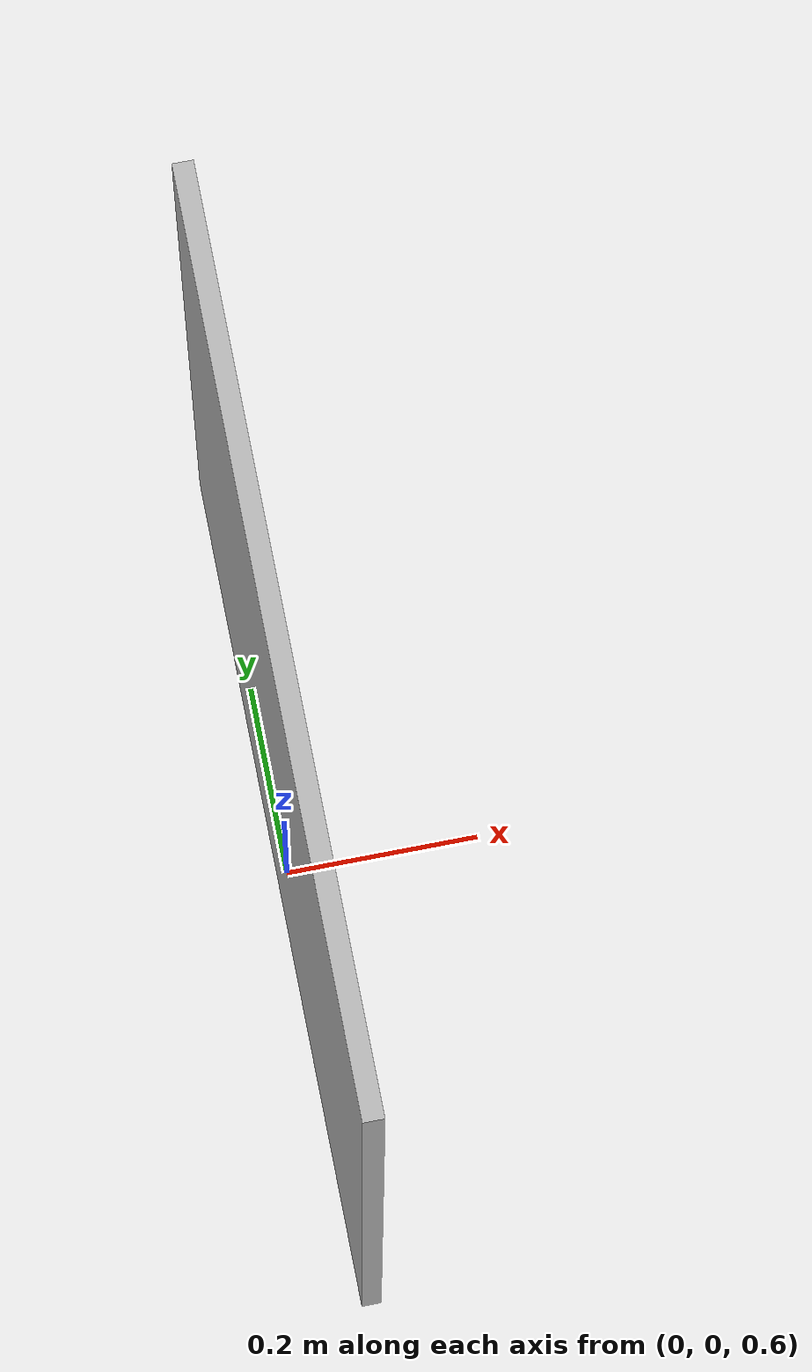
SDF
<?xml version="1.0" ?>
<sdf version="1.6">
  <model name="box_target_green">
    <pose>0 0 1 0 1.57 0</pose>
    <static>true</static>
    <link name="link">

      <visual name="visual">
        <geometry>
          <mesh>
            <scale>0.15 0.15 0.01</scale>
            <uri>model://box_target_green/meshes/mesh.dae</uri>
          </mesh>
        </geometry>
      </visual>
    </link>
  </model>
</sdf>
